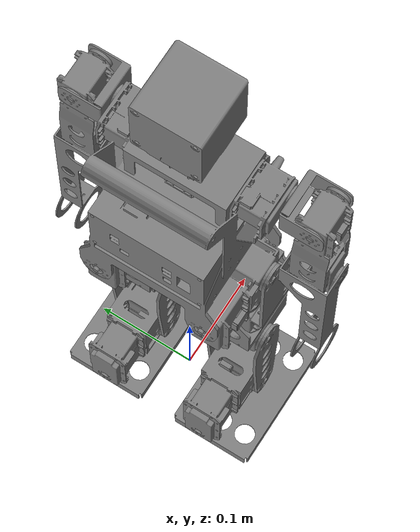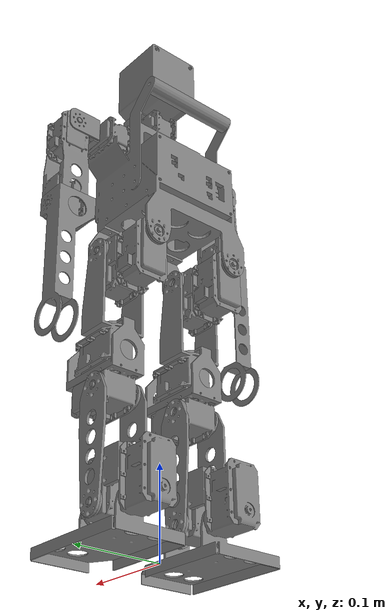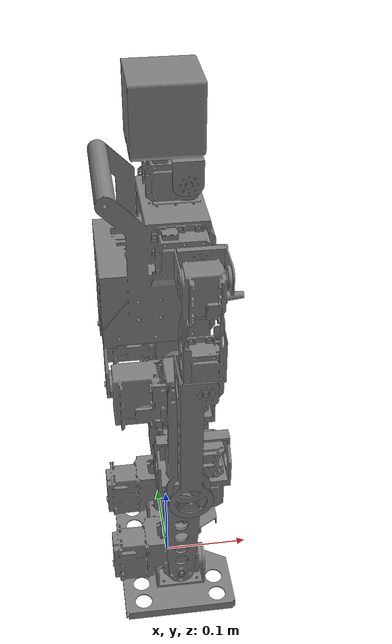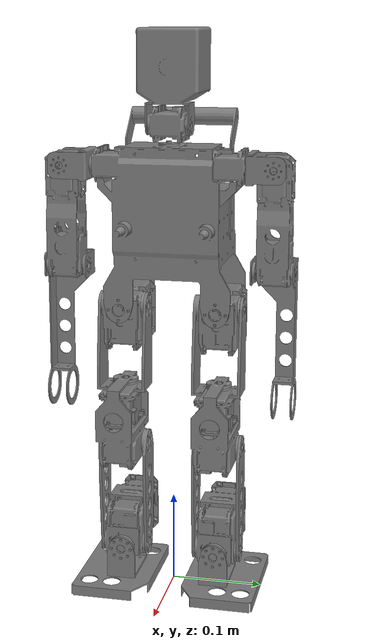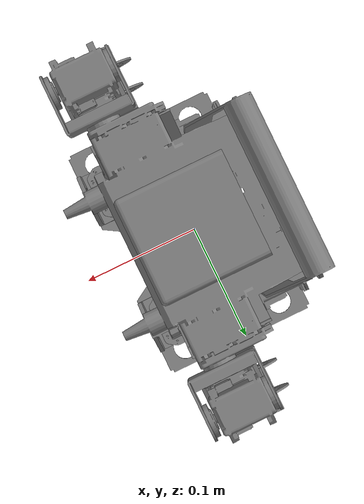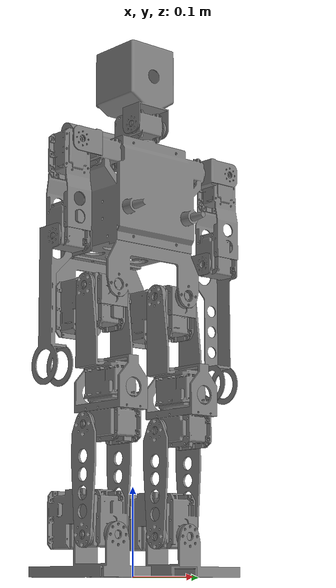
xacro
<?xml version="1.0" encoding="utf-8"?>
<robot name="ikid_robot" xmlns:xacro="http://www.ros.org/wiki/xacro">
  <link name="dummy">
   </link>
  <joint name="dummy_joint" type="fixed">
     <parent link="dummy"/>
     <child link="base_link"/>
   </joint>

  <link
    name="base_link">
    <inertial>
      <origin
        xyz="-0.0049139 0.00020164 0.42538"
        rpy="0 0 0" />
      <mass
        value="1.4497" />
      <inertia
        ixx="0.1"
        ixy="1.1059E-06"
        ixz="-1.1333E-05"
        iyy="0.1"
        iyz="-1.5608E-07"
        izz="0.1" />
    </inertial>
    <visual>
      <origin
        xyz="0 0 0"
        rpy="0 0 0" />
      <geometry>
        <mesh
          filename="package://ikid_robot/meshes/base_link.STL" />
      </geometry>
      <material
        name="">
        <color
          rgba="0.5 0.5 0.5 1" />
      </material>
    </visual>
    <collision>
      <origin
        xyz="0 0 0"
        rpy="0 0 0" />
      <geometry>
        <mesh
          filename="package://ikid_robot/meshes/base_link.STL" />
      </geometry>
    </collision>
  </link>
  <link
    name="left_arm_front_swing_Link">
    <inertial>
      <origin
        xyz="0.00023019 0.031788 0.00074659"
        rpy="0 0 0" />
      <mass
        value="0.013441" />
      <inertia
        ixx="0.05"
        ixy="1.127E-19"
        ixz="-7.1015E-20"
        iyy="0.05"
        iyz="1.7696E-21"
        izz="0.05" />
    </inertial>
    <visual>
      <origin
        xyz="0 0 0"
        rpy="0 0 0" />
      <geometry>
        <mesh
          filename="package://ikid_robot/meshes/left_arm_front_swing_Link.STL" />
      </geometry>
      <material
        name="">
        <color
          rgba="0.5 0.5 0.5 1" />
      </material>
    </visual>
    <collision>
      <origin
        xyz="0 0 0"
        rpy="0 0 0" />
      <geometry>
        <mesh
          filename="package://ikid_robot/meshes/left_arm_front_swing_Link.STL" />
      </geometry>
    </collision>
  </link>
  <joint
    name="left_arm_front_swing"
    type="revolute">
    <origin
      xyz="0.023943 0.06306 0.47489"
      rpy="0 0 0" />
    <parent
      link="base_link" />
    <child
      link="left_arm_front_swing_Link" />
    <axis
      xyz="0 1 0" />
    <limit
      lower="-3.14"
      upper="3.14"
      effort="100"
      velocity="5" />
  </joint>
  <link
    name="left_arm_side_swing_Link">
    <inertial>
      <origin
        xyz="8.2471E-05 0.00022065 -0.055139"
        rpy="0 0 0" />
      <mass
        value="0.17186" />
      <inertia
        ixx="0.05"
        ixy="-1.2039E-10"
        ixz="6.8181E-07"
        iyy="0.05"
        iyz="6.8181E-07"
        izz="0.05" />
    </inertial>
    <visual>
      <origin
        xyz="0 0 0"
        rpy="0 0 0" />
      <geometry>
        <mesh
          filename="package://ikid_robot/meshes/left_arm_side_swing_Link.STL" />
      </geometry>
      <material
        name="">
        <color
          rgba="0.5 0.5 0.5 1" />
      </material>
    </visual>
    <collision>
      <origin
        xyz="0 0 0"
        rpy="0 0 0" />
      <geometry>
        <mesh
          filename="package://ikid_robot/meshes/left_arm_side_swing_Link.STL" />
      </geometry>
    </collision>
  </link>
  <joint
    name="left_arm_side_swing"
    type="revolute">
    <origin
      xyz="-0.00086981 0.0493 0.00074659"
      rpy="0 0 0" />
    <parent
      link="left_arm_front_swing_Link" />
    <child
      link="left_arm_side_swing_Link" />
    <axis
      xyz="1 0 0" />
    <limit
      lower="-3.14"
      upper="3.14"
      effort="100"
      velocity="5" />
  </joint>
  <link
    name="left_arm_elbow_front_swing_Link">
    <inertial>
      <origin
        xyz="-0.013265 0.0079524 -0.061069"
        rpy="0 0 0" />
      <mass
        value="0.033574" />
      <inertia
        ixx="0.05"
        ixy="-2.4668E-08"
        ixz="-1.2632E-06"
        iyy="0.05"
        iyz="6.4462E-06"
        izz="0.05" />
    </inertial>
    <visual>
      <origin
        xyz="0 0 0"
        rpy="0 0 0" />
      <geometry>
        <mesh
          filename="package://ikid_robot/meshes/left_arm_elbow_front_swing_Link.STL" />
      </geometry>
      <material
        name="">
        <color
          rgba="0.5 0.5 0.5 1" />
      </material>
    </visual>
    <collision>
      <origin
        xyz="0 0 0"
        rpy="0 0 0" />
      <geometry>
        <mesh
          filename="package://ikid_robot/meshes/left_arm_elbow_front_swing_Link.STL" />
      </geometry>
    </collision>
  </link>
  <joint
    name="left_arm_elbow_front_swing"
    type="revolute">
    <origin
      xyz="0 0.0001 -0.1091"
      rpy="0 0 0" />
    <parent
      link="left_arm_side_swing_Link" />
    <child
      link="left_arm_elbow_front_swing_Link" />
    <axis
      xyz="0 1 0" />
    <limit
      lower="-3.14"
      upper="3.14"
      effort="100"
      velocity="5" />
  </joint>
  <link
    name="right_arm_front_swing_Link">
    <inertial>
      <origin
        xyz="0.00023019 -0.032088 0.00074659"
        rpy="0 0 0" />
      <mass
        value="0.013441" />
      <inertia
        ixx="0.05"
        ixy="-5.2071E-20"
        ixz="-7.1477E-20"
        iyy="0.05"
        iyz="-2.7864E-21"
        izz="0.05" />
    </inertial>
    <visual>
      <origin
        xyz="0 0 0"
        rpy="0 0 0" />
      <geometry>
        <mesh
          filename="package://ikid_robot/meshes/right_arm_front_swing_Link.STL" />
      </geometry>
      <material
        name="">
        <color
          rgba="0.5 0.5 0.5 1" />
      </material>
    </visual>
    <collision>
      <origin
        xyz="0 0 0"
        rpy="0 0 0" />
      <geometry>
        <mesh
          filename="package://ikid_robot/meshes/right_arm_front_swing_Link.STL" />
      </geometry>
    </collision>
  </link>
  <joint
    name="right_arm_front_swing"
    type="revolute">
    <origin
      xyz="0.023943 -0.06304 0.47489"
      rpy="0 0 0" />
    <parent
      link="base_link" />
    <child
      link="right_arm_front_swing_Link" />
    <axis
      xyz="0 1 0" />
    <limit
      lower="-3.14"
      upper="3.14"
      effort="100"
      velocity="5" />
  </joint>
  <link
    name="right_arm_side_swing_Link">
    <inertial>
      <origin
        xyz="8.2472E-05 -0.00022065 -0.055139"
        rpy="0 0 0" />
      <mass
        value="0.17186" />
      <inertia
        ixx="0.05"
        ixy="1.1897E-10"
        ixz="6.8181E-07"
        iyy="0.05"
        iyz="-6.8181E-07"
        izz="0.05" />
    </inertial>
    <visual>
      <origin
        xyz="0 0 0"
        rpy="0 0 0" />
      <geometry>
        <mesh
          filename="package://ikid_robot/meshes/right_arm_side_swing_Link.STL" />
      </geometry>
      <material
        name="">
        <color
          rgba="0.5 0.5 0.5 1" />
      </material>
    </visual>
    <collision>
      <origin
        xyz="0 0 0"
        rpy="0 0 0" />
      <geometry>
        <mesh
          filename="package://ikid_robot/meshes/right_arm_side_swing_Link.STL" />
      </geometry>
    </collision>
  </link>
  <joint
    name="right_arm_side_swing"
    type="revolute">
    <origin
      xyz="-0.00086981 -0.0496 0.00074659"
      rpy="0 0 0" />
    <parent
      link="right_arm_front_swing_Link" />
    <child
      link="right_arm_side_swing_Link" />
    <axis
      xyz="1 0 0" />
    <limit
      lower="-3.14"
      upper="3.14"
      effort="100"
      velocity="5" />
  </joint>
  <link
    name="right_arm_elbow_front_swing_Link">
    <inertial>
      <origin
        xyz="-0.013265 -0.0079524 -0.061069"
        rpy="0 0 0" />
      <mass
        value="0.033574" />
      <inertia
        ixx="0.05"
        ixy="2.4668E-08"
        ixz="-1.2632E-06"
        iyy="0.05"
        iyz="-6.4462E-06"
        izz="0.05" />
    </inertial>
    <visual>
      <origin
        xyz="0 0 0"
        rpy="0 0 0" />
      <geometry>
        <mesh
          filename="package://ikid_robot/meshes/right_arm_elbow_front_swing_Link.STL" />
      </geometry>
      <material
        name="">
        <color
          rgba="0.5 0.5 0.5 1" />
      </material>
    </visual>
    <collision>
      <origin
        xyz="0 0 0"
        rpy="0 0 0" />
      <geometry>
        <mesh
          filename="package://ikid_robot/meshes/right_arm_elbow_front_swing_Link.STL" />
      </geometry>
    </collision>
  </link>
  <joint
    name="right_arm_elbow_front_swing"
    type="revolute">
    <origin
      xyz="0 -0.0001 -0.1091"
      rpy="0 0 0" />
    <parent
      link="right_arm_side_swing_Link" />
    <child
      link="right_arm_elbow_front_swing_Link" />
    <axis
      xyz="0 1 0" />
    <limit
      lower="-3.14"
      upper="3.14"
      effort="100"
      velocity="5" />
  </joint>
  <link
    name="left_hip_side_swing_Link">
    <inertial>
      <origin
        xyz="-0.022135 0.00024677 -0.014884"
        rpy="0 0 0" />
      <mass
        value="0.29812" />
      <inertia
        ixx="0.05"
        ixy="-5.195E-09"
        ixz="1.7239E-06"
        iyy="0.05"
        iyz="-1.5301E-06"
        izz="0.05" />
    </inertial>
    <visual>
      <origin
        xyz="0 0 0"
        rpy="0 0 0" />
      <geometry>
        <mesh
          filename="package://ikid_robot/meshes/left_hip_side_swing_Link.STL" />
      </geometry>
      <material
        name="">
        <color
          rgba="0.5 0.5 0.5 1" />
      </material>
    </visual>
    <collision>
      <origin
        xyz="0 0 0"
        rpy="0 0 0" />
      <geometry>
        <mesh
          filename="package://ikid_robot/meshes/left_hip_side_swing_Link.STL" />
      </geometry>
    </collision>
  </link>
  <joint
    name="left_hip_side_swing"
    type="revolute">
    <origin
      xyz="0.0082185 0.05226 0.3215"
      rpy="0 0 0" />
    <parent
      link="base_link" />
    <child
      link="left_hip_side_swing_Link" />
    <axis
      xyz="1 0 0" />
    <limit
      lower="-3.14"
      upper="3.14"
      effort="100"
      velocity="5" />
  </joint>
  <link
    name="left_hip_front_swing_Link">
    <inertial>
      <origin
        xyz="0.011562 -0.00018218 -0.091435"
        rpy="0 0 0" />
      <mass
        value="0.18056" />
      <inertia
        ixx="0.05"
        ixy="-9.8475E-11"
        ixz="3.5001E-06"
        iyy="0.05"
        iyz="1.8648E-09"
        izz="0.05" />
    </inertial>
    <visual>
      <origin
        xyz="0 0 0"
        rpy="0 0 0" />
      <geometry>
        <mesh
          filename="package://ikid_robot/meshes/left_hip_front_swing_Link.STL" />
      </geometry>
      <material
        name="">
        <color
          rgba="0.5 0.5 0.5 1" />
      </material>
    </visual>
    <collision>
      <origin
        xyz="0 0 0"
        rpy="0 0 0" />
      <geometry>
        <mesh
          filename="package://ikid_robot/meshes/left_hip_front_swing_Link.STL" />
      </geometry>
    </collision>
  </link>
  <joint
    name="left_hip_front_swing"
    type="revolute">
    <origin
      xyz="0 0 0"
      rpy="0 0 0" />
    <parent
      link="left_hip_side_swing_Link" />
    <child
      link="left_hip_front_swing_Link" />
    <axis
      xyz="0 1 0" />
    <limit
      lower="-3.14"
      upper="3.14"
      effort="100"
      velocity="5" />
  </joint>
  <link
    name="left_hip_rotation_Link">
    <inertial>
      <origin
        xyz="0.014813 -3.7865E-05 -0.036419"
        rpy="0 0 0" />
      <mass
        value="0.18036" />
      <inertia
        ixx="0.05"
        ixy="1.5331E-06"
        ixz="3.2002E-07"
        iyy="0.05"
        iyz="7.7563E-13"
        izz="0.05" />
    </inertial>
    <visual>
      <origin
        xyz="0 0 0"
        rpy="0 0 0" />
      <geometry>
        <mesh
          filename="package://ikid_robot/meshes/left_hip_rotation_Link.STL" />
      </geometry>
      <material
        name="">
        <color
          rgba="0.5 0.5 0.5 1" />
      </material>
    </visual>
    <collision>
      <origin
        xyz="0 0 0"
        rpy="0 0 0" />
      <geometry>
        <mesh
          filename="package://ikid_robot/meshes/left_hip_rotation_Link.STL" />
      </geometry>
    </collision>
  </link>
  <joint
    name="left_hip_rotation"
    type="revolute">
    <origin
      xyz="0.00022454 9.9999E-05 -0.1093"
      rpy="0 0 0" />
    <parent
      link="left_hip_front_swing_Link" />
    <child
      link="left_hip_rotation_Link" />
    <axis
      xyz="0 0 1" />
    <limit
      lower="-3.14"
      upper="3.14"
      effort="100"
      velocity="5" />
  </joint>
  <link
    name="left_knee_front_swing_Link">
    <inertial>
      <origin
        xyz="3.525E-15 0.00037693 -0.055362"
        rpy="0 0 0" />
      <mass
        value="0.052413" />
      <inertia
        ixx="0.05"
        ixy="-3.6309E-23"
        ixz="1.0752E-18"
        iyy="0.05"
        iyz="-2.8667E-09"
        izz="0.05" />
    </inertial>
    <visual>
      <origin
        xyz="0 0 0"
        rpy="0 0 0" />
      <geometry>
        <mesh
          filename="package://ikid_robot/meshes/left_knee_front_swing_Link.STL" />
      </geometry>
      <material
        name="">
        <color
          rgba="0.5 0.5 0.5 1" />
      </material>
    </visual>
    <collision>
      <origin
        xyz="0 0 0"
        rpy="0 0 0" />
      <geometry>
        <mesh
          filename="package://ikid_robot/meshes/left_knee_front_swing_Link.STL" />
      </geometry>
    </collision>
  </link>
  <joint
    name="left_knee_front_swing"
    type="revolute">
    <origin
      xyz="0 0 -0.0467"
      rpy="0 0 0" />
    <parent
      link="left_hip_rotation_Link" />
    <child
      link="left_knee_front_swing_Link" />
    <axis
      xyz="0 1 0" />
    <limit
      lower="-3.14"
      upper="3.14"
      effort="100"
      velocity="5" />
  </joint>
  <link
    name="left_ankle_front_swing_link">
    <inertial>
      <origin
        xyz="-0.027146 -2.2367E-05 0.016487"
        rpy="0 0 0" />
      <mass
        value="0.31725" />
      <inertia
        ixx="0.05"
        ixy="1.1096E-08"
        ixz="1.4979E-06"
        iyy="0.05"
        iyz="1.5389E-06"
        izz="0.05" />
    </inertial>
    <visual>
      <origin
        xyz="0 0 0"
        rpy="0 0 0" />
      <geometry>
        <mesh
          filename="package://ikid_robot/meshes/left_ankle_front_swing_link.STL" />
      </geometry>
      <material
        name="">
        <color
          rgba="0.5 0.5 0.5 1" />
      </material>
    </visual>
    <collision>
      <origin
        xyz="0 0 0"
        rpy="0 0 0" />
      <geometry>
        <mesh
          filename="package://ikid_robot/meshes/left_ankle_front_swing_link.STL" />
      </geometry>
    </collision>
  </link>
  <joint
    name="left_ankle_front_swing"
    type="revolute">
    <origin
      xyz="0 0 -0.12"
      rpy="0 0 0" />
    <parent
      link="left_knee_front_swing_Link" />
    <child
      link="left_ankle_front_swing_link" />
    <axis
      xyz="0 1 0" />
    <limit
      lower="-3.14"
      upper="3.14"
      effort="100"
      velocity="5" />
  </joint>
  <link
    name="left_ankle_side_swing_link">
    <inertial>
      <origin
        xyz="0.051938 0.0051363 -0.030595"
        rpy="0 0 0" />
      <mass
        value="0.072019" />
      <inertia
        ixx="0.05"
        ixy="-2.5099E-06"
        ixz="-5.8321E-07"
        iyy="0.05"
        iyz="1.8546E-07"
        izz="0.05" />
    </inertial>
    <visual>
      <origin
        xyz="0 0 0"
        rpy="0 0 0" />
      <geometry>
        <mesh
          filename="package://ikid_robot/meshes/left_ankle_side_swing_link.STL" />
      </geometry>
      <material
        name="">
        <color
          rgba="0.5 0.5 0.5 1" />
      </material>
    </visual>
    <collision>
      <origin
        xyz="0 0 0"
        rpy="0 0 0" />
      <geometry>
        <mesh
          filename="package://ikid_robot/meshes/left_ankle_side_swing_link.STL" />
      </geometry>
    </collision>
  </link>
  <joint
    name="left_ankle_side_swing"
    type="revolute">
    <origin
      xyz="-0.0543 0 0"
      rpy="0 0 0" />
    <parent
      link="left_ankle_front_swing_link" />
    <child
      link="left_ankle_side_swing_link" />
    <axis
      xyz="1 0 0" />
    <limit
      lower="-3.14"
      upper="3.14"
      effort="100"
      velocity="5" />
  </joint>
  <link
    name="right_hip_side_swing_Link">
    <inertial>
      <origin
        xyz="-0.022582 7.7703E-05 -0.015011"
        rpy="0 0 0" />
      <mass
        value="0.29664" />
      <inertia
        ixx="0.05"
        ixy="4.0876E-09"
        ixz="1.8595E-06"
        iyy="0.05"
        iyz="1.536E-06"
        izz="0.05" />
    </inertial>
    <visual>
      <origin
        xyz="0 0 0"
        rpy="0 0 0" />
      <geometry>
        <mesh
          filename="package://ikid_robot/meshes/right_hip_side_swing_Link.STL" />
      </geometry>
      <material
        name="">
        <color
          rgba="0.5 0.5 0.5 1" />
      </material>
    </visual>
    <collision>
      <origin
        xyz="0 0 0"
        rpy="0 0 0" />
      <geometry>
        <mesh
          filename="package://ikid_robot/meshes/right_hip_side_swing_Link.STL" />
      </geometry>
    </collision>
  </link>
  <joint
    name="right_hip_side_swing"
    type="revolute">
    <origin
      xyz="0.008443 -0.05274 0.3216"
      rpy="0 0 0" />
    <parent
      link="base_link" />
    <child
      link="right_hip_side_swing_Link" />
    <axis
      xyz="1 0 0" />
    <limit
      lower="-3.14"
      upper="3.14"
      effort="100"
      velocity="5" />
  </joint>
  <link
    name="right_hip_front_swing_Link">
    <inertial>
      <origin
        xyz="0.011521 2.9657E-05 -0.093025"
        rpy="0 0 0" />
      <mass
        value="0.17768" />
      <inertia
        ixx="0.05"
        ixy="1.0313E-10"
        ixz="3.5001E-06"
        iyy="0.05"
        iyz="-1.8664E-09"
        izz="0.05" />
    </inertial>
    <visual>
      <origin
        xyz="0 0 0"
        rpy="0 0 0" />
      <geometry>
        <mesh
          filename="package://ikid_robot/meshes/right_hip_front_swing_Link.STL" />
      </geometry>
      <material
        name="">
        <color
          rgba="0.5 0.5 0.5 1" />
      </material>
    </visual>
    <collision>
      <origin
        xyz="0 0 0"
        rpy="0 0 0" />
      <geometry>
        <mesh
          filename="package://ikid_robot/meshes/right_hip_front_swing_Link.STL" />
      </geometry>
    </collision>
  </link>
  <joint
    name="right_hip_front_swing"
    type="revolute">
    <origin
      xyz="0 0 0"
      rpy="0 0 0" />
    <parent
      link="right_hip_side_swing_Link" />
    <child
      link="right_hip_front_swing_Link" />
    <axis
      xyz="0 1 0" />
    <limit
      lower="-3.14"
      upper="3.14"
      effort="100"
      velocity="5" />
  </joint>
  <link
    name="right_hip_rotation_Link">
    <inertial>
      <origin
        xyz="0.015054 -0.00032066 -0.036252"
        rpy="0 0 0" />
      <mass
        value="0.17747" />
      <inertia
        ixx="0.05"
        ixy="-1.5331E-06"
        ixz="3.2002E-07"
        iyy="0.05"
        iyz="7.7563E-13"
        izz="0.05" />
    </inertial>
    <visual>
      <origin
        xyz="0 0 0"
        rpy="0 0 0" />
      <geometry>
        <mesh
          filename="package://ikid_robot/meshes/right_hip_rotation_Link.STL" />
      </geometry>
      <material
        name="">
        <color
          rgba="0.5 0.5 0.5 1" />
      </material>
    </visual>
    <collision>
      <origin
        xyz="0 0 0"
        rpy="0 0 0" />
      <geometry>
        <mesh
          filename="package://ikid_robot/meshes/right_hip_rotation_Link.STL" />
      </geometry>
    </collision>
  </link>
  <joint
    name="right_hip_rotation"
    type="revolute">
    <origin
      xyz="0 0.0001 -0.1094"
      rpy="0 0 0" />
    <parent
      link="right_hip_front_swing_Link" />
    <child
      link="right_hip_rotation_Link" />
    <axis
      xyz="0 0 1" />
    <limit
      lower="-3.14"
      upper="3.14"
      effort="100"
      velocity="5" />
  </joint>
  <link
    name="right_knee_front_swing_link">
    <inertial>
      <origin
        xyz="1.9984E-15 0.0007954 -0.052476"
        rpy="0 0 0" />
      <mass
        value="0.055296" />
      <inertia
        ixx="0.05"
        ixy="4.7159E-20"
        ixz="-3.0169E-20"
        iyy="0.05"
        iyz="2.8667E-09"
        izz="0.05" />
    </inertial>
    <visual>
      <origin
        xyz="0 0 0"
        rpy="0 0 0" />
      <geometry>
        <mesh
          filename="package://ikid_robot/meshes/right_knee_front_swing_link.STL" />
      </geometry>
      <material
        name="">
        <color
          rgba="0.5 0.5 0.5 1" />
      </material>
    </visual>
    <collision>
      <origin
        xyz="0 0 0"
        rpy="0 0 0" />
      <geometry>
        <mesh
          filename="package://ikid_robot/meshes/right_knee_front_swing_link.STL" />
      </geometry>
    </collision>
  </link>
  <joint
    name="right_knee_front_swing"
    type="revolute">
    <origin
      xyz="0 0 -0.0467"
      rpy="0 0 0" />
    <parent
      link="right_hip_rotation_Link" />
    <child
      link="right_knee_front_swing_link" />
    <axis
      xyz="0 1 0" />
    <limit
      lower="-3.14"
      upper="3.14"
      effort="100"
      velocity="5" />
  </joint>
  <link
    name="right_ankle_front_swing_link">
    <inertial>
      <origin
        xyz="-0.027146 2.2372E-05 0.016487"
        rpy="0 0 0" />
      <mass
        value="0.31725" />
      <inertia
        ixx="0.05"
        ixy="-1.1101E-08"
        ixz="1.4979E-06"
        iyy="0.05"
        iyz="-1.5389E-06"
        izz="0.05" />
    </inertial>
    <visual>
      <origin
        xyz="0 0 0"
        rpy="0 0 0" />
      <geometry>
        <mesh
          filename="package://ikid_robot/meshes/right_ankle_front_swing_link.STL" />
      </geometry>
      <material
        name="">
        <color
          rgba="0.5 0.5 0.5 1" />
      </material>
    </visual>
    <collision>
      <origin
        xyz="0 0 0"
        rpy="0 0 0" />
      <geometry>
        <mesh
          filename="package://ikid_robot/meshes/right_ankle_front_swing_link.STL" />
      </geometry>
    </collision>
  </link>
  <joint
    name="right_ankle_front_swing"
    type="revolute">
    <origin
      xyz="0 0 -0.12"
      rpy="0 0 0" />
    <parent
      link="right_knee_front_swing_link" />
    <child
      link="right_ankle_front_swing_link" />
    <axis
      xyz="0 1 0" />
    <limit
      lower="-3.14"
      upper="3.14"
      effort="100"
      velocity="5" />
  </joint>
  <link
    name="right_ankle_side_swing_link">
    <inertial>
      <origin
        xyz="0.051938 -0.0051363 -0.030595"
        rpy="0 0 0" />
      <mass
        value="0.072019" />
      <inertia
        ixx="0.05"
        ixy="2.5099E-06"
        ixz="-5.8321E-07"
        iyy="0.05"
        iyz="-1.8546E-07"
        izz="0.05" />
    </inertial>
    <visual>
      <origin
        xyz="0 0 0"
        rpy="0 0 0" />
      <geometry>
        <mesh
          filename="package://ikid_robot/meshes/right_ankle_side_swing_link.STL" />
      </geometry>
      <material
        name="">
        <color
          rgba="0.5 0.5 0.5 1" />
      </material>
    </visual>
    <collision>
      <origin
        xyz="0 0 0"
        rpy="0 0 0" />
      <geometry>
        <mesh
          filename="package://ikid_robot/meshes/right_ankle_side_swing_link.STL" />
      </geometry>
    </collision>
  </link>
  <joint
    name="right_ankle_side_swing"
    type="revolute">
    <origin
      xyz="-0.0543 0 0"
      rpy="0 0 0" />
    <parent
      link="right_ankle_front_swing_link" />
    <child
      link="right_ankle_side_swing_link" />
    <axis
      xyz="1 0 0" />
    <limit
      lower="-3.14"
      upper="3.14"
      effort="100"
      velocity="5" />
  </joint>
  <link
    name="neck_rotation_Link">
    <inertial>
      <origin
        xyz="-0.011959 -0.00032428 0.039298"
        rpy="0 0 0" />
      <mass
        value="0.079118" />
      <inertia
        ixx="0.05"
        ixy="6.8424E-07"
        ixz="2.4311E-09"
        iyy="0.05"
        iyz="5.9485E-11"
        izz="0.05" />
    </inertial>
    <visual>
      <origin
        xyz="0 0 0"
        rpy="0 0 0" />
      <geometry>
        <mesh
          filename="package://ikid_robot/meshes/neck_rotation_Link.STL" />
      </geometry>
      <material
        name="">
        <color
          rgba="0.5 0.5 0.5 1" />
      </material>
    </visual>
    <collision>
      <origin
        xyz="0 0 0"
        rpy="0 0 0" />
      <geometry>
        <mesh
          filename="package://ikid_robot/meshes/neck_rotation_Link.STL" />
      </geometry>
    </collision>
  </link>
  <joint
    name="neck_rotation"
    type="revolute">
    <origin
      xyz="0.023943 1E-05 0.47859"
      rpy="0 0 0" />
    <parent
      link="base_link" />
    <child
      link="neck_rotation_Link" />
    <axis
      xyz="0 0 1" />
    <limit
      lower="-3.14"
      upper="3.14"
      effort="100"
      velocity="5" />
  </joint>
  <link
    name="neck_front_swing_Link">
    <inertial>
      <origin
        xyz="-0.024276 0.00099999 0.053934"
        rpy="0 0 0" />
      <mass
        value="0.25423" />
      <inertia
        ixx="0.05"
        ixy="1.0021E-10"
        ixz="1.3919E-05"
        iyy="0.05"
        iyz="-7.4912E-11"
        izz="0.05" />
    </inertial>
    <visual>
      <origin
        xyz="0 0 0"
        rpy="0 0 0" />
      <geometry>
        <mesh
          filename="package://ikid_robot/meshes/neck_front_swing_Link.STL" />
      </geometry>
      <material
        name="">
        <color
          rgba="0.5 0.5 0.5 1" />
      </material>
    </visual>
    <collision>
      <origin
        xyz="0 0 0"
        rpy="0 0 0" />
      <geometry>
        <mesh
          filename="package://ikid_robot/meshes/neck_front_swing_Link.STL" />
      </geometry>
    </collision>
  </link>
  <joint
    name="neck_front_swing"
    type="revolute">
    <origin
      xyz="-0.001 -0.0005 0.0393"
      rpy="0 0 0" />
    <parent
      link="neck_rotation_Link" />
    <child
      link="neck_front_swing_Link" />
    <axis
      xyz="0 1 0" />
    <limit
      lower="-3.14"
      upper="3.14"
      effort="100"
      velocity="5" />
  </joint>

  <xacro:include filename="gazebo_control.urdf.xacro" />
  <xacro:include filename="ikid_imu.urdf.xacro" />
  <xacro:include filename="ikid_camera.urdf.xacro" />
</robot>
